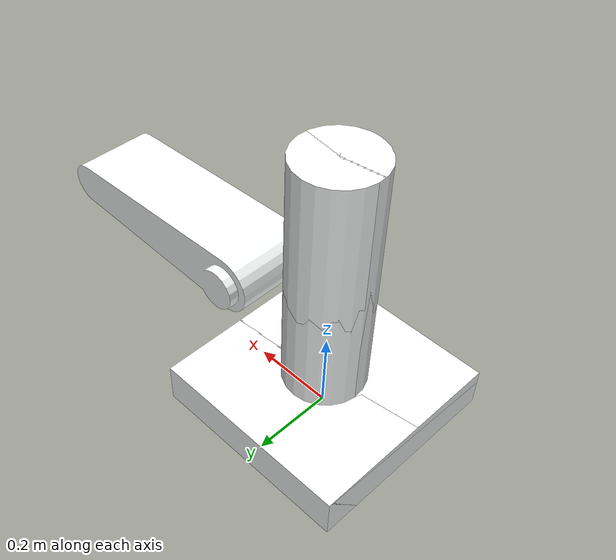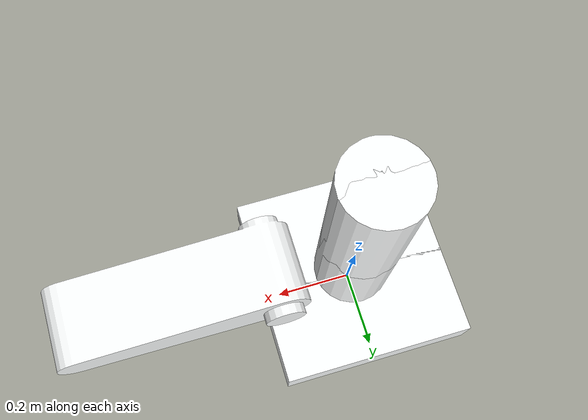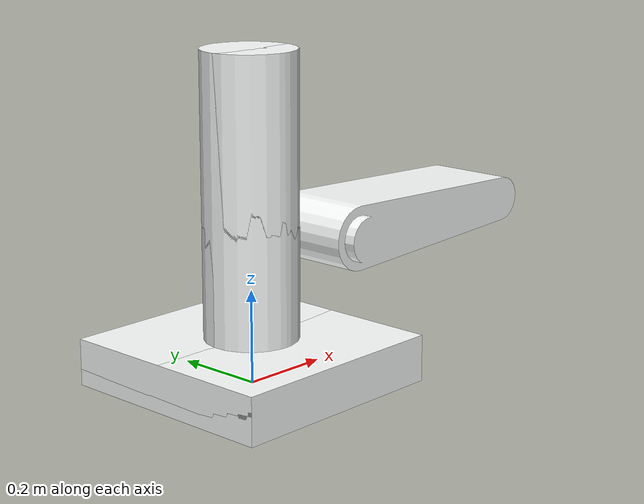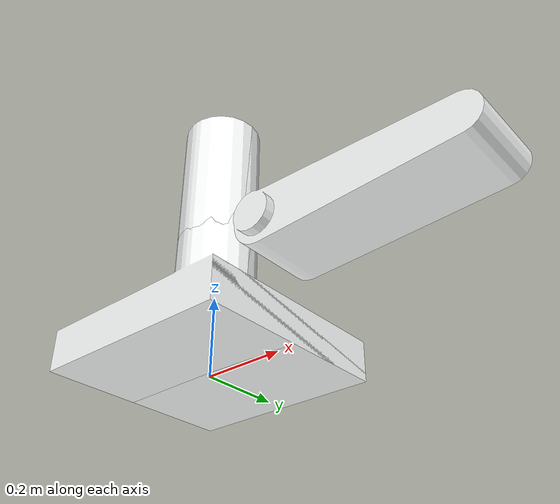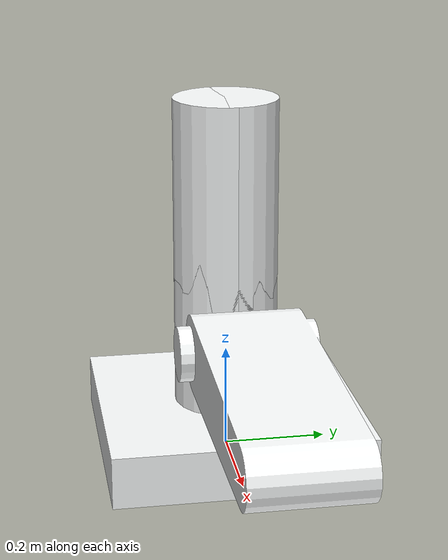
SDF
<sdf version='1.10'>
  <model name='assem'>
    <link name='base_link'>
      <inertial>
        <pose>2.0816999999999999e-17 0 0.20044999999999999 0 0 0</pose>
        <mass>43.850000000000001</mass>
        <inertia>
          <ixx>2.4708000000000001</ixx>
          <ixy>-3.4693999999999997e-17</ixy>
          <ixz>1.4478000000000001e-16</ixz>
          <iyy>2.4708000000000001</iyy>
          <iyz>-6.3986999999999997e-18</iyz>
          <izz>1.1358999999999999</izz>
        </inertia>
      </inertial>
      <collision name='base_link_collision'>
        <pose>0 0 0 0 0 0</pose>
        <geometry>
          <mesh>
            <scale>1 1 1</scale>
            <uri>model://assem/meshes/base_link.STL</uri>
          </mesh>
        </geometry>
      </collision>
      <visual name='base_link_visual'>
        <pose>0 0 0 0 0 0</pose>
        <geometry>
          <mesh>
            <scale>1 1 1</scale>
            <uri>model://assem/meshes/base_link.STL</uri>
          </mesh>
        </geometry>
        <material>
          <diffuse>0.990199983 1 1 1</diffuse>
          <ambient>0.990199983 1 1 1</ambient>
        </material>
      </visual>
    </link>
    <joint name='joint1' type='prismatic'>
      <pose relative_to='base_link'>0 0 0.34999999999999998 1.5708 0 0</pose>
      <parent>base_link</parent>
      <child>link1</child>
      <axis>
        <xyz>0 1 0</xyz>
        <limit>
          <lower>0</lower>
          <upper>0.5</upper>
          <effort>300</effort>
          <velocity>3</velocity>
        </limit>
        <dynamics>
          <spring_reference>0</spring_reference>
          <spring_stiffness>0</spring_stiffness>
        </dynamics>
      </axis>
    </joint>
    <link name='link1'>
      <pose relative_to='joint1'>0 0 0 0 0 0</pose>
      <inertial>
        <pose>0 -0.14954999999999999 -1.1102e-16 0 0 0</pose>
        <mass>43.850000000000001</mass>
        <inertia>
          <ixx>2.4708000000000001</ixx>
          <ixy>1.6072e-16</ixy>
          <ixz>3.4693999999999997e-17</ixz>
          <iyy>1.1358999999999999</iyy>
          <iyz>-3.1554000000000002e-18</iyz>
          <izz>2.4708000000000001</izz>
        </inertia>
      </inertial>
      <collision name='link1_collision'>
        <pose>0 0 0 0 0 0</pose>
        <geometry>
          <mesh>
            <scale>1 1 1</scale>
            <uri>model://assem/meshes/link1.STL</uri>
          </mesh>
        </geometry>
      </collision>
      <visual name='link1_visual'>
        <pose>0 0 0 0 0 0</pose>
        <geometry>
          <mesh>
            <scale>1 1 1</scale>
            <uri>model://assem/meshes/link1.STL</uri>
          </mesh>
        </geometry>
        <material>
          <diffuse>0.990199983 1 1 1</diffuse>
          <ambient>0.990199983 1 1 1</ambient>
        </material>
      </visual>
    </link>
    <joint name='joint2' type='revolute'>
      <pose relative_to='link1'>0.22500000000000001 -0.065000000000000002 0.125 0 0 0</pose>
      <parent>link1</parent>
      <child>link2</child>
      <axis>
        <xyz>0 0 1</xyz>
        <limit>
          <lower>-785</lower>
          <upper>785</upper>
          <effort>100</effort>
          <velocity>5</velocity>
        </limit>
        <dynamics>
          <spring_reference>0</spring_reference>
          <spring_stiffness>0</spring_stiffness>
        </dynamics>
      </axis>
    </joint>
    <link name='link2'>
      <pose relative_to='joint2'>0 0 0 0 0 0</pose>
      <inertial>
        <pose>0.21723999999999999 0 -0.125 0 0 0</pose>
        <mass>14.727</mass>
        <inertia>
          <ixx>0.070229</ixx>
          <ixy>-2.2622000000000002e-18</ixy>
          <ixz>-2.821e-17</ixz>
          <iyy>0.49082999999999999</iyy>
          <iyz>1.3056e-20</iyz>
          <izz>0.45551000000000003</izz>
        </inertia>
      </inertial>
      <collision name='link2_collision'>
        <pose>0 0 0 0 0 0</pose>
        <geometry>
          <mesh>
            <scale>1 1 1</scale>
            <uri>model://assem/meshes/link2.STL</uri>
          </mesh>
        </geometry>
      </collision>
      <visual name='link2_visual'>
        <pose>0 0 0 0 0 0</pose>
        <geometry>
          <mesh>
            <scale>1 1 1</scale>
            <uri>model://assem/meshes/link2.STL</uri>
          </mesh>
        </geometry>
        <material>
          <diffuse>0.990199983 1 1 1</diffuse>
          <ambient>0.990199983 1 1 1</ambient>
        </material>
      </visual>
    </link>
  </model>
</sdf>
